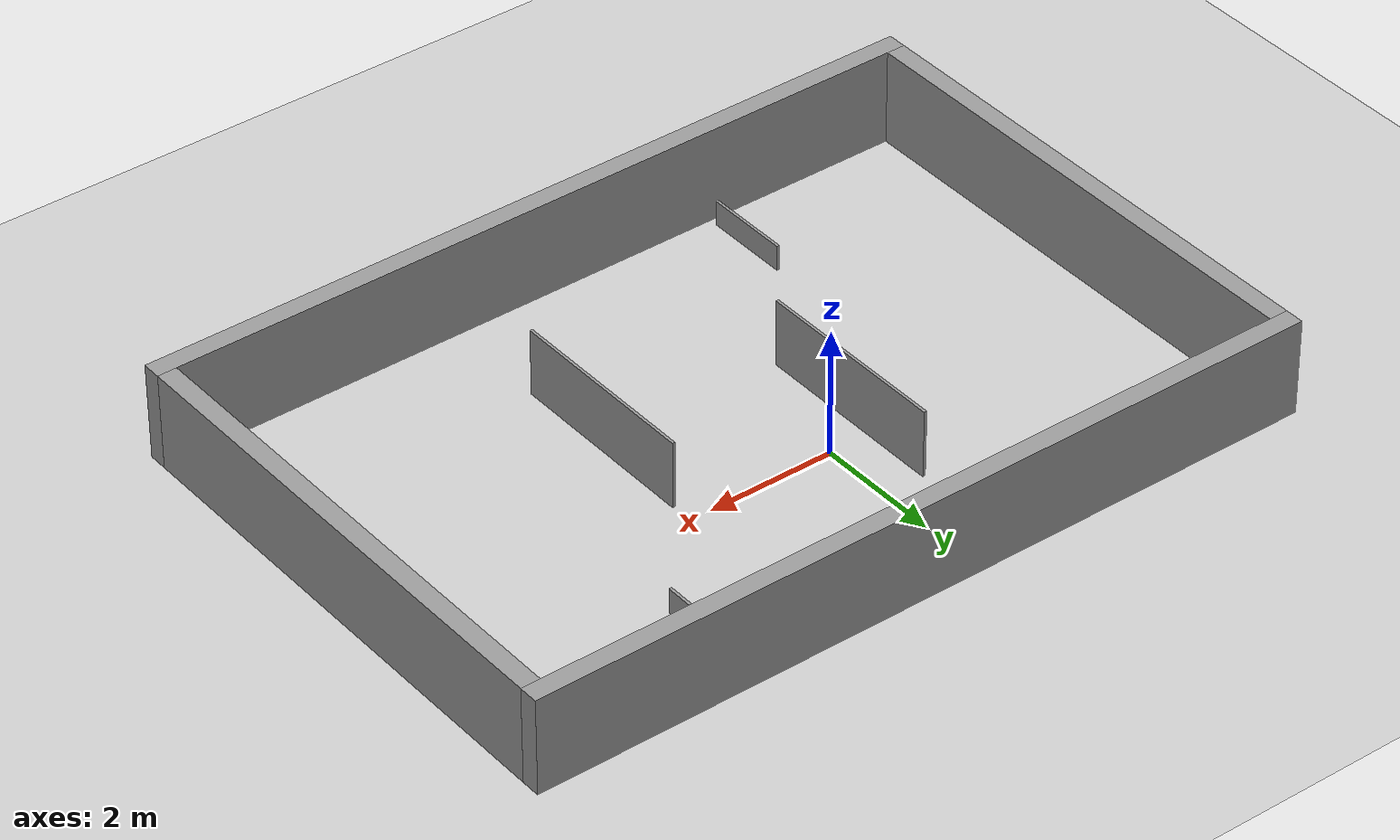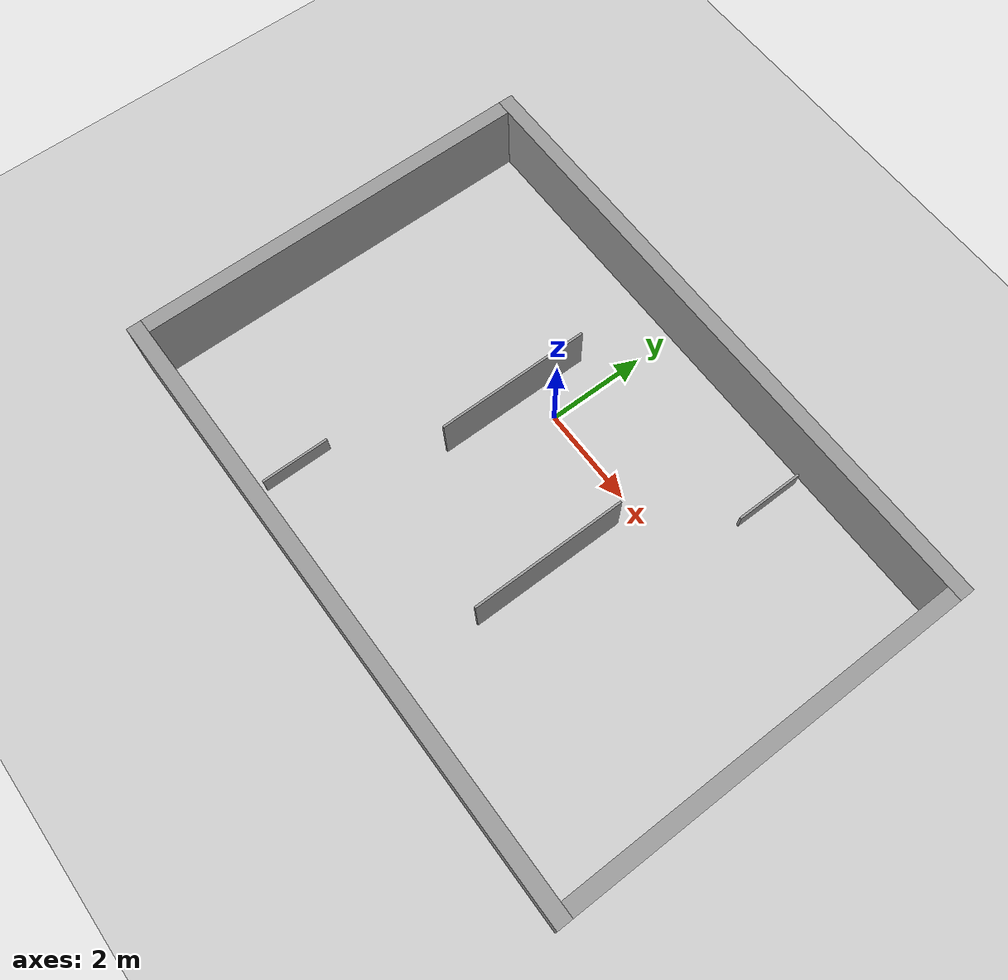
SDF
<sdf version="1.7">
 <world name="default">
  <light name="sun" type="directional">
   <pose>0 0 10 0 -0 0</pose>
   <diffuse>0.8 0.8 0.8 1</diffuse>
   <specular>0.2 0.2 0.2 1</specular>
   <attenuation>
    <range>1000</range>
    <constant>0.9</constant>
    <linear>0.01</linear>
    <quadratic>0.001</quadratic>
   </attenuation>
   <direction>-0.5 0.1 -0.9</direction>
   <spot><inner_angle>0</inner_angle><outer_angle>0</outer_angle><falloff>0</falloff></spot>
  </light>
  <model name="ground_plane">
   <static>1</static>
   <link name="link">
    <collision name="collision">
     <geometry><plane><normal>0 0 1</normal><size>100 100</size></plane></geometry>
     <surface><friction><ode><mu>100</mu><mu2>50</mu2></ode></friction></surface>
    </collision>
    <visual name="visual">
     <cast_shadows>0</cast_shadows>
     <geometry><plane><normal>0 0 1</normal><size>100 100</size></plane></geometry>
     <material>
      <script><uri>file://media/materials/scripts/gazebo.material</uri><name>Gazebo/Grey</name></script>
     </material>
    </visual>
   </link>
  </model>
  <gravity>0 0 -9.8</gravity>
  <magnetic_field>6e-06 2.3e-05 -4.2e-05</magnetic_field>
  <atmosphere type="adiabatic"/>
  <physics type="ode">
   <max_step_size>0.001</max_step_size>
   <real_time_factor>1</real_time_factor>
   <real_time_update_rate>1000</real_time_update_rate>
  </physics>
  <scene><ambient>0.4 0.4 0.4 1</ambient><background>0.7 0.7 0.7 1</background><shadows>1</shadows></scene>
  <spherical_coordinates>
   <surface_model>EARTH_WGS84</surface_model>
   <latitude_deg>0</latitude_deg>
   <longitude_deg>0</longitude_deg>
   <elevation>0</elevation>
   <heading_deg>0</heading_deg>
  </spherical_coordinates>
  <model name="RM_Field_1">
   <link name="link_2">
    <inertial>
     <mass>1</mass>
     <inertia>
      <ixx>0.166667</ixx>
      <ixy>0</ixy>
      <ixz>0</ixz>
      <iyy>0.166667</iyy>
      <iyz>0</iyz>
      <izz>0.166667</izz>
     </inertia>
    </inertial>
    <pose>-0 -4.15 0.5 0 -0 0</pose>
    <visual name="visual">
     <geometry><box><size>12.6 0.3 2</size></box></geometry>
     <material>
      <lighting>1</lighting>
      <script><uri>file://media/materials/scripts/gazebo.material</uri><name>Gazebo/Grey</name></script>
      <shader type="pixel"><normal_map>__default__</normal_map></shader>
      <ambient>0.3 0.3 0.3 1</ambient>
      <diffuse>0.7 0.7 0.7 1</diffuse>
      <specular>0.01 0.01 0.01 1</specular>
      <emissive>0 0 0 1</emissive>
     </material>
    </visual>
    <collision name="collision">
     <geometry><box><size>12.6 0.3 2</size></box></geometry>
     <surface>
      <friction>
       <ode><mu>1</mu><mu2>1</mu2><fdir1>0 0 0</fdir1><slip1>0</slip1><slip2>0</slip2></ode>
       <torsional>
        <coefficient>1</coefficient>
        <patch_radius>0</patch_radius>
        <surface_radius>0</surface_radius>
        <use_patch_radius>1</use_patch_radius>
        <ode><slip>0</slip></ode>
       </torsional>
      </friction>
      <bounce><restitution_coefficient>0</restitution_coefficient><threshold>1e+06</threshold></bounce>
      <contact>
       <collide_without_contact>0</collide_without_contact>
       <collide_without_contact_bitmask>1</collide_without_contact_bitmask>
       <collide_bitmask>1</collide_bitmask>
       <ode>
        <soft_cfm>0</soft_cfm>
        <soft_erp>0.2</soft_erp>
        <kp>1e+13</kp>
        <kd>1</kd>
        <max_vel>0.01</max_vel>
        <min_depth>0</min_depth>
       </ode>
       <bullet>
        <split_impulse>1</split_impulse>
        <split_impulse_penetration_threshold>-0.01</split_impulse_penetration_threshold>
        <soft_cfm>0</soft_cfm>
        <soft_erp>0.2</soft_erp>
        <kp>1e+13</kp>
        <kd>1</kd>
       </bullet>
      </contact>
     </surface>
    </collision>
   </link>
   <link name="link_2_clone">
    <inertial>
     <mass>1</mass>
     <inertia>
      <ixx>0.166667</ixx>
      <ixy>0</ixy>
      <ixz>0</ixz>
      <iyy>0.166667</iyy>
      <iyz>0</iyz>
      <izz>0.166667</izz>
     </inertia>
    </inertial>
    <pose>-0 4.15 0.5 0 -0 0</pose>
    <visual name="visual">
     <geometry><box><size>12.6 0.3 2</size></box></geometry>
     <material>
      <lighting>1</lighting>
      <script><uri>file://media/materials/scripts/gazebo.material</uri><name>Gazebo/Grey</name></script>
      <shader type="pixel"><normal_map>__default__</normal_map></shader>
      <ambient>0.3 0.3 0.3 1</ambient>
      <diffuse>0.7 0.7 0.7 1</diffuse>
      <specular>0.01 0.01 0.01 1</specular>
      <emissive>0 0 0 1</emissive>
     </material>
    </visual>
    <collision name="collision">
     <geometry><box><size>12.6 0.3 2</size></box></geometry>
     <surface>
      <friction>
       <ode><mu>1</mu><mu2>1</mu2><fdir1>0 0 0</fdir1><slip1>0</slip1><slip2>0</slip2></ode>
       <torsional>
        <coefficient>1</coefficient>
        <patch_radius>0</patch_radius>
        <surface_radius>0</surface_radius>
        <use_patch_radius>1</use_patch_radius>
        <ode><slip>0</slip></ode>
       </torsional>
      </friction>
      <bounce><restitution_coefficient>0</restitution_coefficient><threshold>1e+06</threshold></bounce>
      <contact>
       <collide_without_contact>0</collide_without_contact>
       <collide_without_contact_bitmask>1</collide_without_contact_bitmask>
       <collide_bitmask>1</collide_bitmask>
       <ode>
        <soft_cfm>0</soft_cfm>
        <soft_erp>0.2</soft_erp>
        <kp>1e+13</kp>
        <kd>1</kd>
        <max_vel>0.01</max_vel>
        <min_depth>0</min_depth>
       </ode>
       <bullet>
        <split_impulse>1</split_impulse>
        <split_impulse_penetration_threshold>-0.01</split_impulse_penetration_threshold>
        <soft_cfm>0</soft_cfm>
        <soft_erp>0.2</soft_erp>
        <kp>1e+13</kp>
        <kd>1</kd>
       </bullet>
      </contact>
     </surface>
    </collision>
   </link>
   <link name="link_3">
    <inertial>
     <mass>1</mass>
     <inertia>
      <ixx>0.166667</ixx>
      <ixy>0</ixy>
      <ixz>0</ixz>
      <iyy>0.166667</iyy>
      <iyz>0</iyz>
      <izz>0.166667</izz>
     </inertia>
    </inertial>
    <pose>-6.15 0 0.5 0 -0 0</pose>
    <visual name="visual">
     <geometry><box><size>0.3 8 2</size></box></geometry>
     <material>
      <lighting>1</lighting>
      <script><uri>file://media/materials/scripts/gazebo.material</uri><name>Gazebo/Grey</name></script>
      <shader type="pixel"><normal_map>__default__</normal_map></shader>
      <ambient>0.3 0.3 0.3 1</ambient>
      <diffuse>0.7 0.7 0.7 1</diffuse>
      <specular>0.01 0.01 0.01 1</specular>
      <emissive>0 0 0 1</emissive>
     </material>
    </visual>
    <collision name="collision">
     <geometry><box><size>0.3 8 2</size></box></geometry>
     <surface>
      <friction>
       <ode><mu>1</mu><mu2>1</mu2><fdir1>0 0 0</fdir1><slip1>0</slip1><slip2>0</slip2></ode>
       <torsional>
        <coefficient>1</coefficient>
        <patch_radius>0</patch_radius>
        <surface_radius>0</surface_radius>
        <use_patch_radius>1</use_patch_radius>
        <ode><slip>0</slip></ode>
       </torsional>
      </friction>
      <bounce><restitution_coefficient>0</restitution_coefficient><threshold>1e+06</threshold></bounce>
      <contact>
       <collide_without_contact>0</collide_without_contact>
       <collide_without_contact_bitmask>1</collide_without_contact_bitmask>
       <collide_bitmask>1</collide_bitmask>
       <ode>
        <soft_cfm>0</soft_cfm>
        <soft_erp>0.2</soft_erp>
        <kp>1e+13</kp>
        <kd>1</kd>
        <max_vel>0.01</max_vel>
        <min_depth>0</min_depth>
       </ode>
       <bullet>
        <split_impulse>1</split_impulse>
        <split_impulse_penetration_threshold>-0.01</split_impulse_penetration_threshold>
        <soft_cfm>0</soft_cfm>
        <soft_erp>0.2</soft_erp>
        <kp>1e+13</kp>
        <kd>1</kd>
       </bullet>
      </contact>
     </surface>
    </collision>
   </link>
   <link name="link_3_clone">
    <inertial>
     <mass>1</mass>
     <inertia>
      <ixx>0.166667</ixx>
      <ixy>0</ixy>
      <ixz>0</ixz>
      <iyy>0.166667</iyy>
      <iyz>0</iyz>
      <izz>0.166667</izz>
     </inertia>
    </inertial>
    <pose>6.15 0 0.5 0 -0 0</pose>
    <visual name="visual">
     <geometry><box><size>0.3 8 2</size></box></geometry>
     <material>
      <lighting>1</lighting>
      <script><uri>file://media/materials/scripts/gazebo.material</uri><name>Gazebo/Grey</name></script>
      <shader type="pixel"><normal_map>__default__</normal_map></shader>
      <ambient>0.3 0.3 0.3 1</ambient>
      <diffuse>0.7 0.7 0.7 1</diffuse>
      <specular>0.01 0.01 0.01 1</specular>
      <emissive>0 0 0 1</emissive>
     </material>
    </visual>
    <collision name="collision">
     <geometry><box><size>0.3 8 2</size></box></geometry>
     <surface>
      <friction>
       <ode><mu>1</mu><mu2>1</mu2><fdir1>0 0 0</fdir1><slip1>0</slip1><slip2>0</slip2></ode>
       <torsional>
        <coefficient>1</coefficient>
        <patch_radius>0</patch_radius>
        <surface_radius>0</surface_radius>
        <use_patch_radius>1</use_patch_radius>
        <ode><slip>0</slip></ode>
       </torsional>
      </friction>
      <bounce><restitution_coefficient>0</restitution_coefficient><threshold>1e+06</threshold></bounce>
      <contact>
       <collide_without_contact>0</collide_without_contact>
       <collide_without_contact_bitmask>1</collide_without_contact_bitmask>
       <collide_bitmask>1</collide_bitmask>
       <ode>
        <soft_cfm>0</soft_cfm>
        <soft_erp>0.2</soft_erp>
        <kp>1e+13</kp>
        <kd>1</kd>
        <max_vel>0.01</max_vel>
        <min_depth>0</min_depth>
       </ode>
       <bullet>
        <split_impulse>1</split_impulse>
        <split_impulse_penetration_threshold>-0.01</split_impulse_penetration_threshold>
        <soft_cfm>0</soft_cfm>
        <soft_erp>0.2</soft_erp>
        <kp>1e+13</kp>
        <kd>1</kd>
       </bullet>
      </contact>
     </surface>
    </collision>
   </link>
   <link name="link_4">
    <inertial>
     <mass>1</mass>
     <inertia>
      <ixx>0.166667</ixx>
      <ixy>0</ixy>
      <ixz>0</ixz>
      <iyy>0.166667</iyy>
      <iyz>0</iyz>
      <izz>0.166667</izz>
     </inertia>
    </inertial>
    <pose>-5.1875 -0.857 -0.28 -1e-05 -0 0</pose>
    <visual name="visual">
     <geometry><box><size>1.625 0.088 0.441</size></box></geometry>
     <material>
      <lighting>1</lighting>
      <script><uri>file://media/materials/scripts/gazebo.material</uri><name>Gazebo/Grey</name></script>
      <shader type="pixel"><normal_map>__default__</normal_map></shader>
      <ambient>0.3 0.3 0.3 1</ambient>
      <diffuse>0.7 0.7 0.7 1</diffuse>
      <specular>0.01 0.01 0.01 1</specular>
      <emissive>0 0 0 1</emissive>
     </material>
    </visual>
    <collision name="collision">
     <geometry><box><size>1.625 0.088 0.441</size></box></geometry>
     <surface>
      <friction>
       <ode><mu>1</mu><mu2>1</mu2><fdir1>0 0 0</fdir1><slip1>0</slip1><slip2>0</slip2></ode>
       <torsional>
        <coefficient>1</coefficient>
        <patch_radius>0</patch_radius>
        <surface_radius>0</surface_radius>
        <use_patch_radius>1</use_patch_radius>
        <ode><slip>0</slip></ode>
       </torsional>
      </friction>
      <bounce><restitution_coefficient>0</restitution_coefficient><threshold>1e+06</threshold></bounce>
      <contact>
       <collide_without_contact>0</collide_without_contact>
       <collide_without_contact_bitmask>1</collide_without_contact_bitmask>
       <collide_bitmask>1</collide_bitmask>
       <ode>
        <soft_cfm>0</soft_cfm>
        <soft_erp>0.2</soft_erp>
        <kp>1e+13</kp>
        <kd>1</kd>
        <max_vel>0.01</max_vel>
        <min_depth>0</min_depth>
       </ode>
       <bullet>
        <split_impulse>1</split_impulse>
        <split_impulse_penetration_threshold>-0.01</split_impulse_penetration_threshold>
        <soft_cfm>0</soft_cfm>
        <soft_erp>0.2</soft_erp>
        <kp>1e+13</kp>
        <kd>1</kd>
       </bullet>
      </contact>
     </surface>
    </collision>
   </link>
   <link name="link_4_clone">
    <inertial>
     <mass>1</mass>
     <inertia>
      <ixx>0.166667</ixx>
      <ixy>0</ixy>
      <ixz>0</ixz>
      <iyy>0.166667</iyy>
      <iyz>0</iyz>
      <izz>0.166667</izz>
     </inertia>
    </inertial>
    <pose>5.1875 0.857 -0.28 -2e-05 0 0</pose>
    <visual name="visual">
     <geometry><box><size>1.625 0.088 0.441</size></box></geometry>
     <material>
      <lighting>1</lighting>
      <script><uri>file://media/materials/scripts/gazebo.material</uri><name>Gazebo/Grey</name></script>
      <shader type="pixel"><normal_map>__default__</normal_map></shader>
      <ambient>0.3 0.3 0.3 1</ambient>
      <diffuse>0.7 0.7 0.7 1</diffuse>
      <specular>0.01 0.01 0.01 1</specular>
      <emissive>0 0 0 1</emissive>
     </material>
    </visual>
    <collision name="collision">
     <geometry><box><size>1.625 0.088 0.441</size></box></geometry>
     <surface>
      <friction>
       <ode><mu>1</mu><mu2>1</mu2><fdir1>0 0 0</fdir1><slip1>0</slip1><slip2>0</slip2></ode>
       <torsional>
        <coefficient>1</coefficient>
        <patch_radius>0</patch_radius>
        <surface_radius>0</surface_radius>
        <use_patch_radius>1</use_patch_radius>
        <ode><slip>0</slip></ode>
       </torsional>
      </friction>
      <bounce><restitution_coefficient>0</restitution_coefficient><threshold>1e+06</threshold></bounce>
      <contact>
       <collide_without_contact>0</collide_without_contact>
       <collide_without_contact_bitmask>1</collide_without_contact_bitmask>
       <collide_bitmask>1</collide_bitmask>
       <ode>
        <soft_cfm>0</soft_cfm>
        <soft_erp>0.2</soft_erp>
        <kp>1e+13</kp>
        <kd>1</kd>
        <max_vel>0.01</max_vel>
        <min_depth>0</min_depth>
       </ode>
       <bullet>
        <split_impulse>1</split_impulse>
        <split_impulse_penetration_threshold>-0.01</split_impulse_penetration_threshold>
        <soft_cfm>0</soft_cfm>
        <soft_erp>0.2</soft_erp>
        <kp>1e+13</kp>
        <kd>1</kd>
       </bullet>
      </contact>
     </surface>
    </collision>
   </link>
   <link name="link_4_clone_0">
    <inertial>
     <mass>1</mass>
     <inertia>
      <ixx>0.166667</ixx>
      <ixy>0</ixy>
      <ixz>0</ixz>
      <iyy>0.166667</iyy>
      <iyz>0</iyz>
      <izz>0.166667</izz>
     </inertia>
    </inertial>
    <pose>-2.857 -3.1875 -0.28 0 -0 0</pose>
    <visual name="visual">
     <geometry><box><size>0.088 1.625 0.441</size></box></geometry>
     <material>
      <lighting>1</lighting>
      <script><uri>file://media/materials/scripts/gazebo.material</uri><name>Gazebo/Grey</name></script>
      <shader type="pixel"><normal_map>__default__</normal_map></shader>
      <ambient>0.3 0.3 0.3 1</ambient>
      <diffuse>0.7 0.7 0.7 1</diffuse>
      <specular>0.01 0.01 0.01 1</specular>
      <emissive>0 0 0 1</emissive>
     </material>
    </visual>
    <collision name="collision">
     <geometry><box><size>0.088 1.625 0.441</size></box></geometry>
     <surface>
      <friction>
       <ode><mu>1</mu><mu2>1</mu2><fdir1>0 0 0</fdir1><slip1>0</slip1><slip2>0</slip2></ode>
       <torsional>
        <coefficient>1</coefficient>
        <patch_radius>0</patch_radius>
        <surface_radius>0</surface_radius>
        <use_patch_radius>1</use_patch_radius>
        <ode><slip>0</slip></ode>
       </torsional>
      </friction>
      <bounce><restitution_coefficient>0</restitution_coefficient><threshold>1e+06</threshold></bounce>
      <contact>
       <collide_without_contact>0</collide_without_contact>
       <collide_without_contact_bitmask>1</collide_without_contact_bitmask>
       <collide_bitmask>1</collide_bitmask>
       <ode>
        <soft_cfm>0</soft_cfm>
        <soft_erp>0.2</soft_erp>
        <kp>1e+13</kp>
        <kd>1</kd>
        <max_vel>0.01</max_vel>
        <min_depth>0</min_depth>
       </ode>
       <bullet>
        <split_impulse>1</split_impulse>
        <split_impulse_penetration_threshold>-0.01</split_impulse_penetration_threshold>
        <soft_cfm>0</soft_cfm>
        <soft_erp>0.2</soft_erp>
        <kp>1e+13</kp>
        <kd>1</kd>
       </bullet>
      </contact>
     </surface>
    </collision>
   </link>
   <link name="link_4_clone_0_clone">
    <inertial>
     <mass>1</mass>
     <inertia>
      <ixx>0.166667</ixx>
      <ixy>0</ixy>
      <ixz>0</ixz>
      <iyy>0.166667</iyy>
      <iyz>0</iyz>
      <izz>0.166667</izz>
     </inertia>
    </inertial>
    <pose>2.857 3.1875 -0.28 -3e-05 0 0</pose>
    <visual name="visual">
     <geometry><box><size>0.088 1.625 0.441</size></box></geometry>
     <material>
      <lighting>1</lighting>
      <script><uri>file://media/materials/scripts/gazebo.material</uri><name>Gazebo/Grey</name></script>
      <shader type="pixel"><normal_map>__default__</normal_map></shader>
      <ambient>0.3 0.3 0.3 1</ambient>
      <diffuse>0.7 0.7 0.7 1</diffuse>
      <specular>0.01 0.01 0.01 1</specular>
      <emissive>0 0 0 1</emissive>
     </material>
    </visual>
    <collision name="collision">
     <geometry><box><size>0.088 1.625 0.441</size></box></geometry>
     <surface>
      <friction>
       <ode><mu>1</mu><mu2>1</mu2><fdir1>0 0 0</fdir1><slip1>0</slip1><slip2>0</slip2></ode>
       <torsional>
        <coefficient>1</coefficient>
        <patch_radius>0</patch_radius>
        <surface_radius>0</surface_radius>
        <use_patch_radius>1</use_patch_radius>
        <ode><slip>0</slip></ode>
       </torsional>
      </friction>
      <bounce><restitution_coefficient>0</restitution_coefficient><threshold>1e+06</threshold></bounce>
      <contact>
       <collide_without_contact>0</collide_without_contact>
       <collide_without_contact_bitmask>1</collide_without_contact_bitmask>
       <collide_bitmask>1</collide_bitmask>
       <ode>
        <soft_cfm>0</soft_cfm>
        <soft_erp>0.2</soft_erp>
        <kp>1e+13</kp>
        <kd>1</kd>
        <max_vel>0.01</max_vel>
        <min_depth>0</min_depth>
       </ode>
       <bullet>
        <split_impulse>1</split_impulse>
        <split_impulse_penetration_threshold>-0.01</split_impulse_penetration_threshold>
        <soft_cfm>0</soft_cfm>
        <soft_erp>0.2</soft_erp>
        <kp>1e+13</kp>
        <kd>1</kd>
       </bullet>
      </contact>
     </surface>
    </collision>
   </link>
   <link name="link_4_clone_0_clone_0">
    <inertial>
     <mass>1</mass>
     <inertia>
      <ixx>0.166667</ixx>
      <ixy>0</ixy>
      <ixz>0</ixz>
      <iyy>0.166667</iyy>
      <iyz>0</iyz>
      <izz>0.166667</izz>
     </inertia>
    </inertial>
    <pose>-2.857 -3.187 0.161 0 -0 0</pose>
    <visual name="visual">
     <geometry><box><size>0.044 1.376 0.455</size></box></geometry>
     <material>
      <lighting>1</lighting>
      <script><uri>file://media/materials/scripts/gazebo.material</uri><name>Gazebo/Grey</name></script>
      <shader type="pixel"><normal_map>__default__</normal_map></shader>
      <ambient>0.3 0.3 0.3 1</ambient>
      <diffuse>0.7 0.7 0.7 1</diffuse>
      <specular>0.01 0.01 0.01 1</specular>
      <emissive>0 0 0 1</emissive>
     </material>
    </visual>
    <collision name="collision">
     <geometry><box><size>0.044 1.376 0.455</size></box></geometry>
     <surface>
      <friction>
       <ode><mu>1</mu><mu2>1</mu2><fdir1>0 0 0</fdir1><slip1>0</slip1><slip2>0</slip2></ode>
       <torsional>
        <coefficient>1</coefficient>
        <patch_radius>0</patch_radius>
        <surface_radius>0</surface_radius>
        <use_patch_radius>1</use_patch_radius>
        <ode><slip>0</slip></ode>
       </torsional>
      </friction>
      <bounce><restitution_coefficient>0</restitution_coefficient><threshold>1e+06</threshold></bounce>
      <contact>
       <collide_without_contact>0</collide_without_contact>
       <collide_without_contact_bitmask>1</collide_without_contact_bitmask>
       <collide_bitmask>1</collide_bitmask>
       <ode>
        <soft_cfm>0</soft_cfm>
        <soft_erp>0.2</soft_erp>
        <kp>1e+13</kp>
        <kd>1</kd>
        <max_vel>0.01</max_vel>
        <min_depth>0</min_depth>
       </ode>
       <bullet>
        <split_impulse>1</split_impulse>
        <split_impulse_penetration_threshold>-0.01</split_impulse_penetration_threshold>
        <soft_cfm>0</soft_cfm>
        <soft_erp>0.2</soft_erp>
        <kp>1e+13</kp>
        <kd>1</kd>
       </bullet>
      </contact>
     </surface>
    </collision>
   </link>
   <link name="link_4_clone_0_clone_0_clone">
    <inertial>
     <mass>1</mass>
     <inertia>
      <ixx>0.166667</ixx>
      <ixy>0</ixy>
      <ixz>0</ixz>
      <iyy>0.166667</iyy>
      <iyz>0</iyz>
      <izz>0.166667</izz>
     </inertia>
    </inertial>
    <pose>2.857 3.187 0.161 -1e-05 -0 0</pose>
    <visual name="visual">
     <geometry><box><size>0.044 1.376 0.455</size></box></geometry>
     <material>
      <lighting>1</lighting>
      <script><uri>file://media/materials/scripts/gazebo.material</uri><name>Gazebo/Grey</name></script>
      <shader type="pixel"><normal_map>__default__</normal_map></shader>
      <ambient>0.3 0.3 0.3 1</ambient>
      <diffuse>0.7 0.7 0.7 1</diffuse>
      <specular>0.01 0.01 0.01 1</specular>
      <emissive>0 0 0 1</emissive>
     </material>
    </visual>
    <collision name="collision">
     <geometry><box><size>0.044 1.376 0.455</size></box></geometry>
     <surface>
      <friction>
       <ode><mu>1</mu><mu2>1</mu2><fdir1>0 0 0</fdir1><slip1>0</slip1><slip2>0</slip2></ode>
       <torsional>
        <coefficient>1</coefficient>
        <patch_radius>0</patch_radius>
        <surface_radius>0</surface_radius>
        <use_patch_radius>1</use_patch_radius>
        <ode><slip>0</slip></ode>
       </torsional>
      </friction>
      <bounce><restitution_coefficient>0</restitution_coefficient><threshold>1e+06</threshold></bounce>
      <contact>
       <collide_without_contact>0</collide_without_contact>
       <collide_without_contact_bitmask>1</collide_without_contact_bitmask>
       <collide_bitmask>1</collide_bitmask>
       <ode>
        <soft_cfm>0</soft_cfm>
        <soft_erp>0.2</soft_erp>
        <kp>1e+13</kp>
        <kd>1</kd>
        <max_vel>0.01</max_vel>
        <min_depth>0</min_depth>
       </ode>
       <bullet>
        <split_impulse>1</split_impulse>
        <split_impulse_penetration_threshold>-0.01</split_impulse_penetration_threshold>
        <soft_cfm>0</soft_cfm>
        <soft_erp>0.2</soft_erp>
        <kp>1e+13</kp>
        <kd>1</kd>
       </bullet>
      </contact>
     </surface>
    </collision>
   </link>
   <link name="link_6">
    <inertial>
     <mass>1</mass>
     <inertia>
      <ixx>0.166667</ixx>
      <ixy>0</ixy>
      <ixz>0</ixz>
      <iyy>0.166667</iyy>
      <iyz>0</iyz>
      <izz>0.166667</izz>
     </inertia>
    </inertial>
    <pose>-1.5 0.75 -0.28 -1e-05 -0 0</pose>
    <visual name="visual">
     <geometry><box><size>0.088 3.125 0.42</size></box></geometry>
     <material>
      <lighting>1</lighting>
      <script><uri>file://media/materials/scripts/gazebo.material</uri><name>Gazebo/Grey</name></script>
      <shader type="pixel"><normal_map>__default__</normal_map></shader>
      <ambient>0.3 0.3 0.3 1</ambient>
      <diffuse>0.7 0.7 0.7 1</diffuse>
      <specular>0.01 0.01 0.01 1</specular>
      <emissive>0 0 0 1</emissive>
     </material>
    </visual>
    <collision name="collision">
     <geometry><box><size>0.088 3.125 0.42</size></box></geometry>
     <surface>
      <friction>
       <ode><mu>1</mu><mu2>1</mu2><fdir1>0 0 0</fdir1><slip1>0</slip1><slip2>0</slip2></ode>
       <torsional>
        <coefficient>1</coefficient>
        <patch_radius>0</patch_radius>
        <surface_radius>0</surface_radius>
        <use_patch_radius>1</use_patch_radius>
        <ode><slip>0</slip></ode>
       </torsional>
      </friction>
      <bounce><restitution_coefficient>0</restitution_coefficient><threshold>1e+06</threshold></bounce>
      <contact>
       <collide_without_contact>0</collide_without_contact>
       <collide_without_contact_bitmask>1</collide_without_contact_bitmask>
       <collide_bitmask>1</collide_bitmask>
       <ode>
        <soft_cfm>0</soft_cfm>
        <soft_erp>0.2</soft_erp>
        <kp>1e+13</kp>
        <kd>1</kd>
        <max_vel>0.01</max_vel>
        <min_depth>0</min_depth>
       </ode>
       <bullet>
        <split_impulse>1</split_impulse>
        <split_impulse_penetration_threshold>-0.01</split_impulse_penetration_threshold>
        <soft_cfm>0</soft_cfm>
        <soft_erp>0.2</soft_erp>
        <kp>1e+13</kp>
        <kd>1</kd>
       </bullet>
      </contact>
     </surface>
    </collision>
   </link>
   <link name="link_6_clone">
    <inertial>
     <mass>1</mass>
     <inertia>
      <ixx>0.166667</ixx>
      <ixy>0</ixy>
      <ixz>0</ixz>
      <iyy>0.166667</iyy>
      <iyz>0</iyz>
      <izz>0.166667</izz>
     </inertia>
    </inertial>
    <pose>1.5 -0.75 -0.28 -2e-05 0 0</pose>
    <visual name="visual">
     <geometry><box><size>0.088 3.125 0.42</size></box></geometry>
     <material>
      <lighting>1</lighting>
      <script><uri>file://media/materials/scripts/gazebo.material</uri><name>Gazebo/Grey</name></script>
      <shader type="pixel"><normal_map>__default__</normal_map></shader>
      <ambient>0.3 0.3 0.3 1</ambient>
      <diffuse>0.7 0.7 0.7 1</diffuse>
      <specular>0.01 0.01 0.01 1</specular>
      <emissive>0 0 0 1</emissive>
     </material>
    </visual>
    <collision name="collision">
     <geometry><box><size>0.088 3.125 0.42</size></box></geometry>
     <surface>
      <friction>
       <ode><mu>1</mu><mu2>1</mu2><fdir1>0 0 0</fdir1><slip1>0</slip1><slip2>0</slip2></ode>
       <torsional>
        <coefficient>1</coefficient>
        <patch_radius>0</patch_radius>
        <surface_radius>0</surface_radius>
        <use_patch_radius>1</use_patch_radius>
        <ode><slip>0</slip></ode>
       </torsional>
      </friction>
      <bounce><restitution_coefficient>0</restitution_coefficient><threshold>1e+06</threshold></bounce>
      <contact>
       <collide_without_contact>0</collide_without_contact>
       <collide_without_contact_bitmask>1</collide_without_contact_bitmask>
       <collide_bitmask>1</collide_bitmask>
       <ode>
        <soft_cfm>0</soft_cfm>
        <soft_erp>0.2</soft_erp>
        <kp>1e+13</kp>
        <kd>1</kd>
        <max_vel>0.01</max_vel>
        <min_depth>0</min_depth>
       </ode>
       <bullet>
        <split_impulse>1</split_impulse>
        <split_impulse_penetration_threshold>-0.01</split_impulse_penetration_threshold>
        <soft_cfm>0</soft_cfm>
        <soft_erp>0.2</soft_erp>
        <kp>1e+13</kp>
        <kd>1</kd>
       </bullet>
      </contact>
     </surface>
    </collision>
   </link>
   <link name="link_6_clone_0">
    <inertial>
     <mass>1</mass>
     <inertia>
      <ixx>0.166667</ixx>
      <ixy>0</ixy>
      <ixz>0</ixz>
      <iyy>0.166667</iyy>
      <iyz>0</iyz>
      <izz>0.166667</izz>
     </inertia>
    </inertial>
    <pose>-1.5 0.75 0.495 -2e-05 0 0</pose>
    <visual name="visual">
     <geometry><box><size>0.044 3.125 1.113</size></box></geometry>
     <material>
      <lighting>1</lighting>
      <script><uri>file://media/materials/scripts/gazebo.material</uri><name>Gazebo/Grey</name></script>
      <shader type="pixel"><normal_map>__default__</normal_map></shader>
      <ambient>0.3 0.3 0.3 1</ambient>
      <diffuse>0.7 0.7 0.7 1</diffuse>
      <specular>0.01 0.01 0.01 1</specular>
      <emissive>0 0 0 1</emissive>
     </material>
    </visual>
    <collision name="collision">
     <geometry><box><size>0.044 3.125 1.113</size></box></geometry>
     <surface>
      <friction>
       <ode><mu>1</mu><mu2>1</mu2><fdir1>0 0 0</fdir1><slip1>0</slip1><slip2>0</slip2></ode>
       <torsional>
        <coefficient>1</coefficient>
        <patch_radius>0</patch_radius>
        <surface_radius>0</surface_radius>
        <use_patch_radius>1</use_patch_radius>
        <ode><slip>0</slip></ode>
       </torsional>
      </friction>
      <bounce><restitution_coefficient>0</restitution_coefficient><threshold>1e+06</threshold></bounce>
      <contact>
       <collide_without_contact>0</collide_without_contact>
       <collide_without_contact_bitmask>1</collide_without_contact_bitmask>
       <collide_bitmask>1</collide_bitmask>
       <ode>
        <soft_cfm>0</soft_cfm>
        <soft_erp>0.2</soft_erp>
        <kp>1e+13</kp>
        <kd>1</kd>
        <max_vel>0.01</max_vel>
        <min_depth>0</min_depth>
       </ode>
       <bullet>
        <split_impulse>1</split_impulse>
        <split_impulse_penetration_threshold>-0.01</split_impulse_penetration_threshold>
        <soft_cfm>0</soft_cfm>
        <soft_erp>0.2</soft_erp>
        <kp>1e+13</kp>
        <kd>1</kd>
       </bullet>
      </contact>
     </surface>
    </collision>
   </link>
   <link name="link_6_clone_0_clone">
    <inertial>
     <mass>1</mass>
     <inertia>
      <ixx>0.166667</ixx>
      <ixy>0</ixy>
      <ixz>0</ixz>
      <iyy>0.166667</iyy>
      <iyz>0</iyz>
      <izz>0.166667</izz>
     </inertia>
    </inertial>
    <pose>1.5 -0.75 0.495 -3e-05 0 0</pose>
    <visual name="visual">
     <geometry><box><size>0.044 3.125 1.113</size></box></geometry>
     <material>
      <lighting>1</lighting>
      <script><uri>file://media/materials/scripts/gazebo.material</uri><name>Gazebo/Grey</name></script>
      <shader type="pixel"><normal_map>__default__</normal_map></shader>
      <ambient>0.3 0.3 0.3 1</ambient>
      <diffuse>0.7 0.7 0.7 1</diffuse>
      <specular>0.01 0.01 0.01 1</specular>
      <emissive>0 0 0 1</emissive>
     </material>
    </visual>
    <collision name="collision">
     <geometry><box><size>0.044 3.125 1.113</size></box></geometry>
     <surface>
      <friction>
       <ode><mu>1</mu><mu2>1</mu2><fdir1>0 0 0</fdir1><slip1>0</slip1><slip2>0</slip2></ode>
       <torsional>
        <coefficient>1</coefficient>
        <patch_radius>0</patch_radius>
        <surface_radius>0</surface_radius>
        <use_patch_radius>1</use_patch_radius>
        <ode><slip>0</slip></ode>
       </torsional>
      </friction>
      <bounce><restitution_coefficient>0</restitution_coefficient><threshold>1e+06</threshold></bounce>
      <contact>
       <collide_without_contact>0</collide_without_contact>
       <collide_without_contact_bitmask>1</collide_without_contact_bitmask>
       <collide_bitmask>1</collide_bitmask>
       <ode>
        <soft_cfm>0</soft_cfm>
        <soft_erp>0.2</soft_erp>
        <kp>1e+13</kp>
        <kd>1</kd>
        <max_vel>0.01</max_vel>
        <min_depth>0</min_depth>
       </ode>
       <bullet>
        <split_impulse>1</split_impulse>
        <split_impulse_penetration_threshold>-0.01</split_impulse_penetration_threshold>
        <soft_cfm>0</soft_cfm>
        <soft_erp>0.2</soft_erp>
        <kp>1e+13</kp>
        <kd>1</kd>
       </bullet>
      </contact>
     </surface>
    </collision>
   </link>
   <static>1</static>
   <pose>0.818215 -1.18538 0 0 -0 0</pose>
  </model>
 </world>
</sdf>
